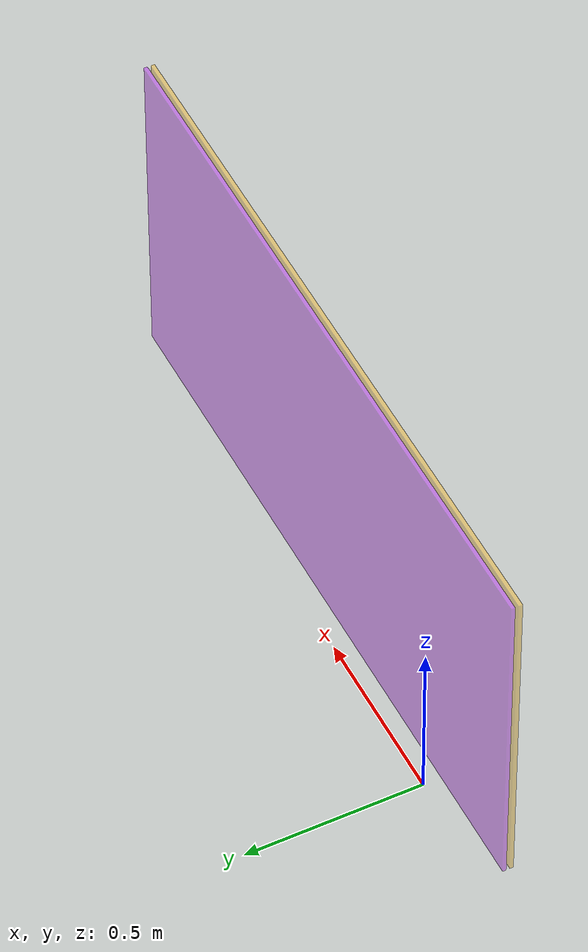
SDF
<sdf version="1.7"><model name="right_side"><static>true</static><link name="aoi_plane"><pose>0.5999999875551677 -0.017877796077782893 0.6 0 0 0.00019999999999997797</pose><visual name="front_face"><geometry><box><size>2.0 0.01 1.0</size></box></geometry><material><ambient>0.7 0.0 1.0 0.4</ambient><diffuse>0.7 0.0 1.0 0.4</diffuse></material></visual><visual name="back_face"><pose>0 -0.02 0 0 0 0</pose><geometry><box><size>2.0 0.01 1.0</size></box></geometry><material><ambient>1.0 0.7 0.0 0.4</ambient><diffuse>1.0 0.7 0.0 0.4</diffuse></material></visual></link></model></sdf>
